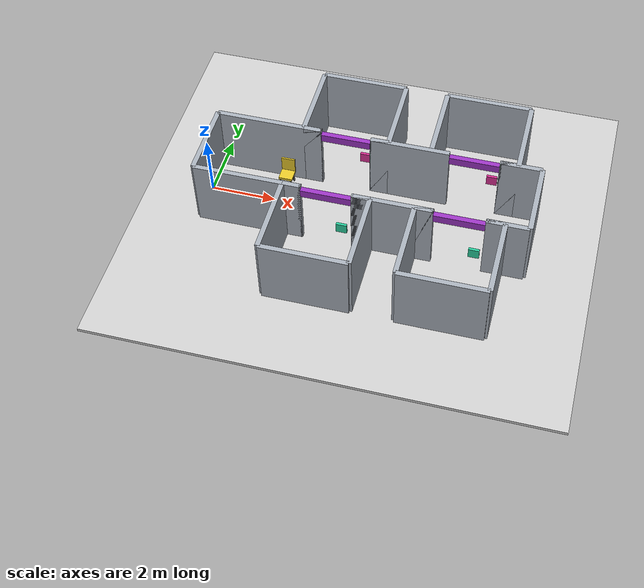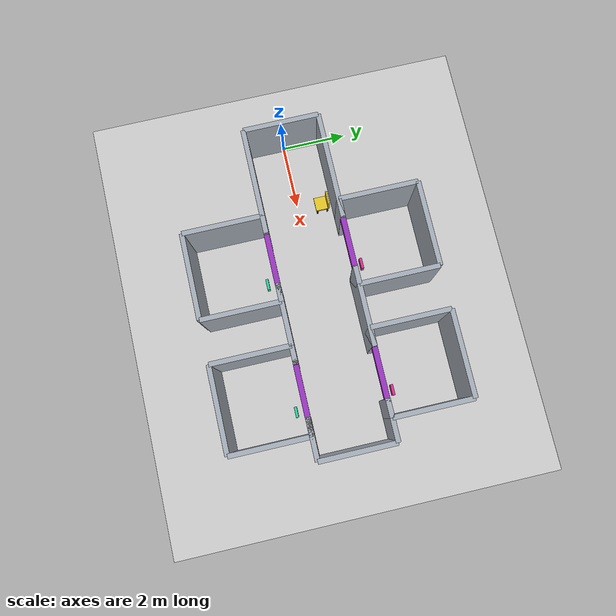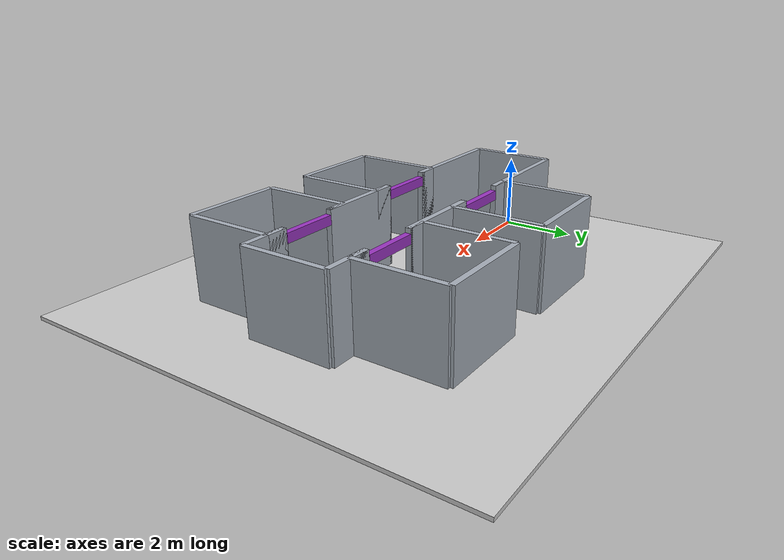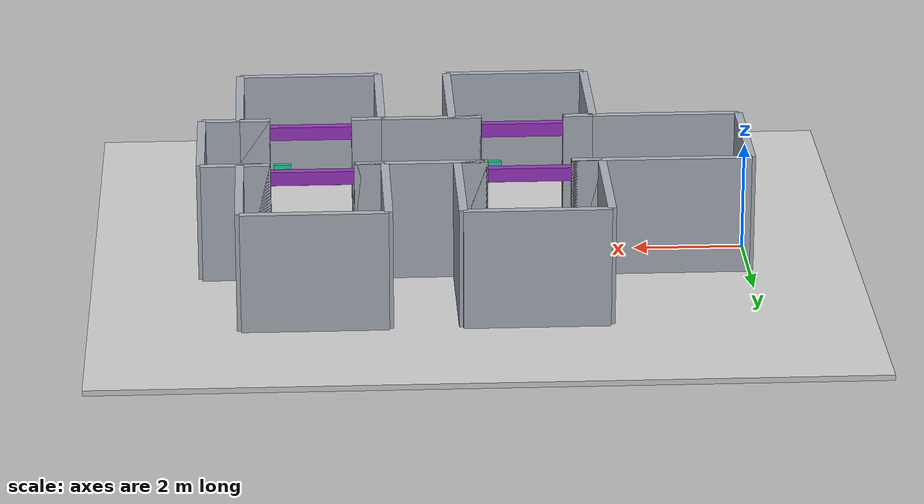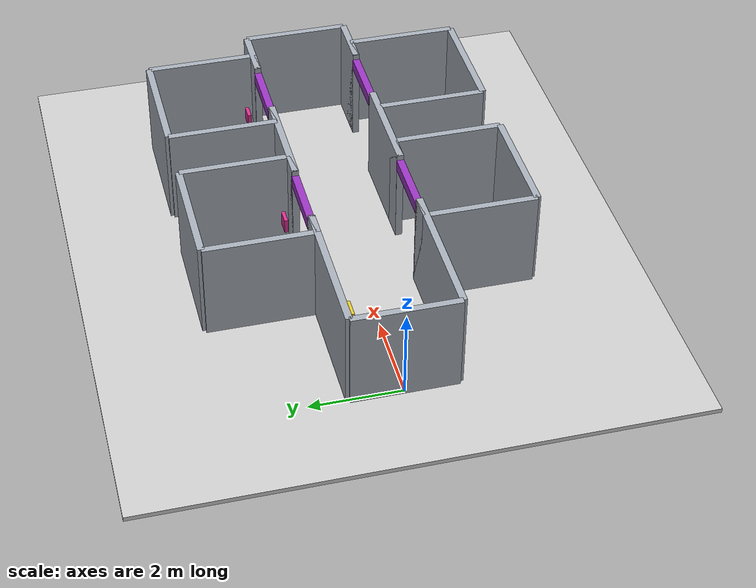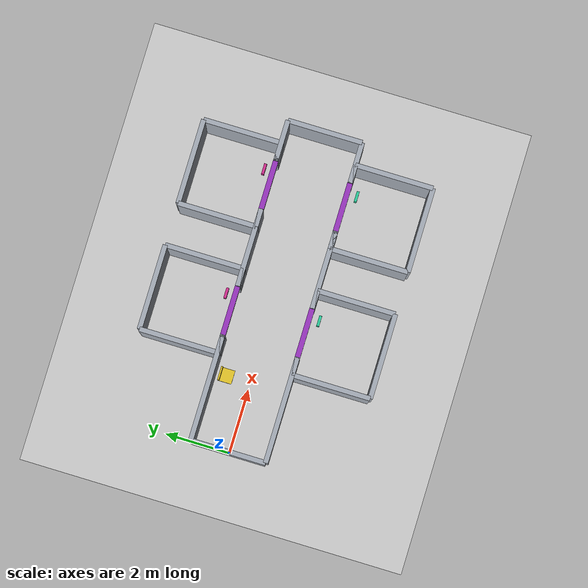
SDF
<sdf version="1.9">
  <world name="default">
    <plugin filename="gz-sim-physics-system" name="gz::sim::systems::Physics" />
    <plugin filename="gz-sim-user-commands-system" name="gz::sim::systems::UserCommands" />
    <plugin filename="gz-sim-sensors-system" name="gz::sim::systems::Sensors">
      <render_engine>ogre2</render_engine>
    </plugin>
    <plugin filename="gz-sim-imu-system" name="gz::sim::systems::Imu" />
    <plugin filename="gz-sim-contact-system" name="gz::sim::systems::Contact" />
    <physics name="3ms" type="ode">
      <max_step_size>0.003</max_step_size>
      <real_time_factor>1</real_time_factor>
    </physics>
    <light name="sun" type="directional">
      <pose>0 0 10 0 0 0</pose>
      <diffuse>0.9 0.9 0.9 1</diffuse>
      <direction>-0.5 0.1 -0.9</direction>
    </light>
    <model name="ground_plane">
      <static>true</static>
      <pose>4.95 0 -0.05 0 0 0</pose>
      <link name="body">
        <collision name="collision">
          <geometry>
            <box>
              <size>13.9 12 0.1</size>
            </box>
          </geometry>
        </collision>
        <visual name="visual">
          <geometry>
            <box>
              <size>13.9 12 0.1</size>
            </box>
          </geometry>
          <material>
            <ambient>0.8 0.8 0.8 1</ambient>
            <diffuse>0.8 0.8 0.8 1</diffuse>
          </material>
        </visual>
      </link>
    </model>
    <model name="start_wall">
      <static>true</static>
      <pose>0 0 1.1 0 0 0</pose>
      <link name="body">
        <collision name="collision">
          <geometry>
            <box>
              <size>0.15 2.3 2.2</size>
            </box>
          </geometry>
        </collision>
        <visual name="visual">
          <geometry>
            <box>
              <size>0.15 2.3 2.2</size>
            </box>
          </geometry>
          <material>
            <ambient>0.65 0.68 0.72 1</ambient>
            <diffuse>0.65 0.68 0.72 1</diffuse>
          </material>
        </visual>
      </link>
    </model>
    <model name="end_wall">
      <static>true</static>
      <pose>9.9 0 1.1 0 0 0</pose>
      <link name="body">
        <collision name="collision">
          <geometry>
            <box>
              <size>0.15 2.3 2.2</size>
            </box>
          </geometry>
        </collision>
        <visual name="visual">
          <geometry>
            <box>
              <size>0.15 2.3 2.2</size>
            </box>
          </geometry>
          <material>
            <ambient>0.65 0.68 0.72 1</ambient>
            <diffuse>0.65 0.68 0.72 1</diffuse>
          </material>
        </visual>
      </link>
    </model>
    <model name="hall_-1_1">
      <static>true</static>
      <pose>1.625 -1.15 1.1 0 0 0</pose>
      <link name="body">
        <collision name="collision">
          <geometry>
            <box>
              <size>3.25 0.15 2.2</size>
            </box>
          </geometry>
        </collision>
        <visual name="visual">
          <geometry>
            <box>
              <size>3.25 0.15 2.2</size>
            </box>
          </geometry>
          <material>
            <ambient>0.65 0.68 0.72 1</ambient>
            <diffuse>0.65 0.68 0.72 1</diffuse>
          </material>
        </visual>
      </link>
    </model>
    <model name="room_-1_1_-1">
      <static>true</static>
      <pose>2.7 -2.3499999999999996 1.1 0 0 0</pose>
      <link name="body">
        <collision name="collision">
          <geometry>
            <box>
              <size>0.15 2.4 2.2</size>
            </box>
          </geometry>
        </collision>
        <visual name="visual">
          <geometry>
            <box>
              <size>0.15 2.4 2.2</size>
            </box>
          </geometry>
          <material>
            <ambient>0.65 0.68 0.72 1</ambient>
            <diffuse>0.65 0.68 0.72 1</diffuse>
          </material>
        </visual>
      </link>
    </model>
    <model name="room_-1_1_1">
      <static>true</static>
      <pose>5.3 -2.3499999999999996 1.1 0 0 0</pose>
      <link name="body">
        <collision name="collision">
          <geometry>
            <box>
              <size>0.15 2.4 2.2</size>
            </box>
          </geometry>
        </collision>
        <visual name="visual">
          <geometry>
            <box>
              <size>0.15 2.4 2.2</size>
            </box>
          </geometry>
          <material>
            <ambient>0.65 0.68 0.72 1</ambient>
            <diffuse>0.65 0.68 0.72 1</diffuse>
          </material>
        </visual>
      </link>
    </model>
    <model name="room_end_-1_1">
      <static>true</static>
      <pose>4.0 -3.55 1.1 0 0 0</pose>
      <link name="body">
        <collision name="collision">
          <geometry>
            <box>
              <size>2.6 0.15 2.2</size>
            </box>
          </geometry>
        </collision>
        <visual name="visual">
          <geometry>
            <box>
              <size>2.6 0.15 2.2</size>
            </box>
          </geometry>
          <material>
            <ambient>0.65 0.68 0.72 1</ambient>
            <diffuse>0.65 0.68 0.72 1</diffuse>
          </material>
        </visual>
      </link>
    </model>
    <model name="jamb_-1_1_-1">
      <static>true</static>
      <pose>2.975 -1.15 1.1 0 0 0</pose>
      <link name="body">
        <collision name="collision">
          <geometry>
            <box>
              <size>0.55 0.15 2.2</size>
            </box>
          </geometry>
        </collision>
        <visual name="visual">
          <geometry>
            <box>
              <size>0.55 0.15 2.2</size>
            </box>
          </geometry>
          <material>
            <ambient>0.65 0.68 0.72 1</ambient>
            <diffuse>0.65 0.68 0.72 1</diffuse>
          </material>
        </visual>
      </link>
    </model>
    <model name="jamb_-1_1_1">
      <static>true</static>
      <pose>5.025 -1.15 1.1 0 0 0</pose>
      <link name="body">
        <collision name="collision">
          <geometry>
            <box>
              <size>0.55 0.15 2.2</size>
            </box>
          </geometry>
        </collision>
        <visual name="visual">
          <geometry>
            <box>
              <size>0.55 0.15 2.2</size>
            </box>
          </geometry>
          <material>
            <ambient>0.65 0.68 0.72 1</ambient>
            <diffuse>0.65 0.68 0.72 1</diffuse>
          </material>
        </visual>
      </link>
    </model>
    <model name="hall_-1_2">
      <static>true</static>
      <pose>5.95 -1.15 1.1 0 0 0</pose>
      <link name="body">
        <collision name="collision">
          <geometry>
            <box>
              <size>2.4000000000000004 0.15 2.2</size>
            </box>
          </geometry>
        </collision>
        <visual name="visual">
          <geometry>
            <box>
              <size>2.4000000000000004 0.15 2.2</size>
            </box>
          </geometry>
          <material>
            <ambient>0.65 0.68 0.72 1</ambient>
            <diffuse>0.65 0.68 0.72 1</diffuse>
          </material>
        </visual>
      </link>
    </model>
    <model name="room_-1_2_-1">
      <static>true</static>
      <pose>6.6000000000000005 -2.3499999999999996 1.1 0 0 0</pose>
      <link name="body">
        <collision name="collision">
          <geometry>
            <box>
              <size>0.15 2.4 2.2</size>
            </box>
          </geometry>
        </collision>
        <visual name="visual">
          <geometry>
            <box>
              <size>0.15 2.4 2.2</size>
            </box>
          </geometry>
          <material>
            <ambient>0.65 0.68 0.72 1</ambient>
            <diffuse>0.65 0.68 0.72 1</diffuse>
          </material>
        </visual>
      </link>
    </model>
    <model name="room_-1_2_1">
      <static>true</static>
      <pose>9.200000000000001 -2.3499999999999996 1.1 0 0 0</pose>
      <link name="body">
        <collision name="collision">
          <geometry>
            <box>
              <size>0.15 2.4 2.2</size>
            </box>
          </geometry>
        </collision>
        <visual name="visual">
          <geometry>
            <box>
              <size>0.15 2.4 2.2</size>
            </box>
          </geometry>
          <material>
            <ambient>0.65 0.68 0.72 1</ambient>
            <diffuse>0.65 0.68 0.72 1</diffuse>
          </material>
        </visual>
      </link>
    </model>
    <model name="room_end_-1_2">
      <static>true</static>
      <pose>7.9 -3.55 1.1 0 0 0</pose>
      <link name="body">
        <collision name="collision">
          <geometry>
            <box>
              <size>2.6 0.15 2.2</size>
            </box>
          </geometry>
        </collision>
        <visual name="visual">
          <geometry>
            <box>
              <size>2.6 0.15 2.2</size>
            </box>
          </geometry>
          <material>
            <ambient>0.65 0.68 0.72 1</ambient>
            <diffuse>0.65 0.68 0.72 1</diffuse>
          </material>
        </visual>
      </link>
    </model>
    <model name="jamb_-1_2_-1">
      <static>true</static>
      <pose>6.875 -1.15 1.1 0 0 0</pose>
      <link name="body">
        <collision name="collision">
          <geometry>
            <box>
              <size>0.55 0.15 2.2</size>
            </box>
          </geometry>
        </collision>
        <visual name="visual">
          <geometry>
            <box>
              <size>0.55 0.15 2.2</size>
            </box>
          </geometry>
          <material>
            <ambient>0.65 0.68 0.72 1</ambient>
            <diffuse>0.65 0.68 0.72 1</diffuse>
          </material>
        </visual>
      </link>
    </model>
    <model name="jamb_-1_2_1">
      <static>true</static>
      <pose>8.925 -1.15 1.1 0 0 0</pose>
      <link name="body">
        <collision name="collision">
          <geometry>
            <box>
              <size>0.55 0.15 2.2</size>
            </box>
          </geometry>
        </collision>
        <visual name="visual">
          <geometry>
            <box>
              <size>0.55 0.15 2.2</size>
            </box>
          </geometry>
          <material>
            <ambient>0.65 0.68 0.72 1</ambient>
            <diffuse>0.65 0.68 0.72 1</diffuse>
          </material>
        </visual>
      </link>
    </model>
    <model name="hall_end_-1">
      <static>true</static>
      <pose>9.275 -1.15 1.1 0 0 0</pose>
      <link name="body">
        <collision name="collision">
          <geometry>
            <box>
              <size>1.25 0.15 2.2</size>
            </box>
          </geometry>
        </collision>
        <visual name="visual">
          <geometry>
            <box>
              <size>1.25 0.15 2.2</size>
            </box>
          </geometry>
          <material>
            <ambient>0.65 0.68 0.72 1</ambient>
            <diffuse>0.65 0.68 0.72 1</diffuse>
          </material>
        </visual>
      </link>
    </model>
    <model name="hall_1_1">
      <static>true</static>
      <pose>1.625 1.15 1.1 0 0 0</pose>
      <link name="body">
        <collision name="collision">
          <geometry>
            <box>
              <size>3.25 0.15 2.2</size>
            </box>
          </geometry>
        </collision>
        <visual name="visual">
          <geometry>
            <box>
              <size>3.25 0.15 2.2</size>
            </box>
          </geometry>
          <material>
            <ambient>0.65 0.68 0.72 1</ambient>
            <diffuse>0.65 0.68 0.72 1</diffuse>
          </material>
        </visual>
      </link>
    </model>
    <model name="room_1_1_-1">
      <static>true</static>
      <pose>2.7 2.3499999999999996 1.1 0 0 0</pose>
      <link name="body">
        <collision name="collision">
          <geometry>
            <box>
              <size>0.15 2.4 2.2</size>
            </box>
          </geometry>
        </collision>
        <visual name="visual">
          <geometry>
            <box>
              <size>0.15 2.4 2.2</size>
            </box>
          </geometry>
          <material>
            <ambient>0.65 0.68 0.72 1</ambient>
            <diffuse>0.65 0.68 0.72 1</diffuse>
          </material>
        </visual>
      </link>
    </model>
    <model name="room_1_1_1">
      <static>true</static>
      <pose>5.3 2.3499999999999996 1.1 0 0 0</pose>
      <link name="body">
        <collision name="collision">
          <geometry>
            <box>
              <size>0.15 2.4 2.2</size>
            </box>
          </geometry>
        </collision>
        <visual name="visual">
          <geometry>
            <box>
              <size>0.15 2.4 2.2</size>
            </box>
          </geometry>
          <material>
            <ambient>0.65 0.68 0.72 1</ambient>
            <diffuse>0.65 0.68 0.72 1</diffuse>
          </material>
        </visual>
      </link>
    </model>
    <model name="room_end_1_1">
      <static>true</static>
      <pose>4.0 3.55 1.1 0 0 0</pose>
      <link name="body">
        <collision name="collision">
          <geometry>
            <box>
              <size>2.6 0.15 2.2</size>
            </box>
          </geometry>
        </collision>
        <visual name="visual">
          <geometry>
            <box>
              <size>2.6 0.15 2.2</size>
            </box>
          </geometry>
          <material>
            <ambient>0.65 0.68 0.72 1</ambient>
            <diffuse>0.65 0.68 0.72 1</diffuse>
          </material>
        </visual>
      </link>
    </model>
    <model name="jamb_1_1_-1">
      <static>true</static>
      <pose>2.975 1.15 1.1 0 0 0</pose>
      <link name="body">
        <collision name="collision">
          <geometry>
            <box>
              <size>0.55 0.15 2.2</size>
            </box>
          </geometry>
        </collision>
        <visual name="visual">
          <geometry>
            <box>
              <size>0.55 0.15 2.2</size>
            </box>
          </geometry>
          <material>
            <ambient>0.65 0.68 0.72 1</ambient>
            <diffuse>0.65 0.68 0.72 1</diffuse>
          </material>
        </visual>
      </link>
    </model>
    <model name="jamb_1_1_1">
      <static>true</static>
      <pose>5.025 1.15 1.1 0 0 0</pose>
      <link name="body">
        <collision name="collision">
          <geometry>
            <box>
              <size>0.55 0.15 2.2</size>
            </box>
          </geometry>
        </collision>
        <visual name="visual">
          <geometry>
            <box>
              <size>0.55 0.15 2.2</size>
            </box>
          </geometry>
          <material>
            <ambient>0.65 0.68 0.72 1</ambient>
            <diffuse>0.65 0.68 0.72 1</diffuse>
          </material>
        </visual>
      </link>
    </model>
    <model name="hall_1_2">
      <static>true</static>
      <pose>5.95 1.15 1.1 0 0 0</pose>
      <link name="body">
        <collision name="collision">
          <geometry>
            <box>
              <size>2.4000000000000004 0.15 2.2</size>
            </box>
          </geometry>
        </collision>
        <visual name="visual">
          <geometry>
            <box>
              <size>2.4000000000000004 0.15 2.2</size>
            </box>
          </geometry>
          <material>
            <ambient>0.65 0.68 0.72 1</ambient>
            <diffuse>0.65 0.68 0.72 1</diffuse>
          </material>
        </visual>
      </link>
    </model>
    <model name="room_1_2_-1">
      <static>true</static>
      <pose>6.6000000000000005 2.3499999999999996 1.1 0 0 0</pose>
      <link name="body">
        <collision name="collision">
          <geometry>
            <box>
              <size>0.15 2.4 2.2</size>
            </box>
          </geometry>
        </collision>
        <visual name="visual">
          <geometry>
            <box>
              <size>0.15 2.4 2.2</size>
            </box>
          </geometry>
          <material>
            <ambient>0.65 0.68 0.72 1</ambient>
            <diffuse>0.65 0.68 0.72 1</diffuse>
          </material>
        </visual>
      </link>
    </model>
    <model name="room_1_2_1">
      <static>true</static>
      <pose>9.200000000000001 2.3499999999999996 1.1 0 0 0</pose>
      <link name="body">
        <collision name="collision">
          <geometry>
            <box>
              <size>0.15 2.4 2.2</size>
            </box>
          </geometry>
        </collision>
        <visual name="visual">
          <geometry>
            <box>
              <size>0.15 2.4 2.2</size>
            </box>
          </geometry>
          <material>
            <ambient>0.65 0.68 0.72 1</ambient>
            <diffuse>0.65 0.68 0.72 1</diffuse>
          </material>
        </visual>
      </link>
    </model>
    <model name="room_end_1_2">
      <static>true</static>
      <pose>7.9 3.55 1.1 0 0 0</pose>
      <link name="body">
        <collision name="collision">
          <geometry>
            <box>
              <size>2.6 0.15 2.2</size>
            </box>
          </geometry>
        </collision>
        <visual name="visual">
          <geometry>
            <box>
              <size>2.6 0.15 2.2</size>
            </box>
          </geometry>
          <material>
            <ambient>0.65 0.68 0.72 1</ambient>
            <diffuse>0.65 0.68 0.72 1</diffuse>
          </material>
        </visual>
      </link>
    </model>
    <model name="jamb_1_2_-1">
      <static>true</static>
      <pose>6.875 1.15 1.1 0 0 0</pose>
      <link name="body">
        <collision name="collision">
          <geometry>
            <box>
              <size>0.55 0.15 2.2</size>
            </box>
          </geometry>
        </collision>
        <visual name="visual">
          <geometry>
            <box>
              <size>0.55 0.15 2.2</size>
            </box>
          </geometry>
          <material>
            <ambient>0.65 0.68 0.72 1</ambient>
            <diffuse>0.65 0.68 0.72 1</diffuse>
          </material>
        </visual>
      </link>
    </model>
    <model name="jamb_1_2_1">
      <static>true</static>
      <pose>8.925 1.15 1.1 0 0 0</pose>
      <link name="body">
        <collision name="collision">
          <geometry>
            <box>
              <size>0.55 0.15 2.2</size>
            </box>
          </geometry>
        </collision>
        <visual name="visual">
          <geometry>
            <box>
              <size>0.55 0.15 2.2</size>
            </box>
          </geometry>
          <material>
            <ambient>0.65 0.68 0.72 1</ambient>
            <diffuse>0.65 0.68 0.72 1</diffuse>
          </material>
        </visual>
      </link>
    </model>
    <model name="hall_end_1">
      <static>true</static>
      <pose>9.275 1.15 1.1 0 0 0</pose>
      <link name="body">
        <collision name="collision">
          <geometry>
            <box>
              <size>1.25 0.15 2.2</size>
            </box>
          </geometry>
        </collision>
        <visual name="visual">
          <geometry>
            <box>
              <size>1.25 0.15 2.2</size>
            </box>
          </geometry>
          <material>
            <ambient>0.65 0.68 0.72 1</ambient>
            <diffuse>0.65 0.68 0.72 1</diffuse>
          </material>
        </visual>
      </link>
    </model>
    <model name="chair_seat">
      <static>true</static>
      <pose>2.2 0.7499999999999999 0.4 0 0 0</pose>
      <link name="body">
        <collision name="collision">
          <geometry>
            <box>
              <size>0.42 0.42 0.08</size>
            </box>
          </geometry>
        </collision>
        <visual name="visual">
          <geometry>
            <box>
              <size>0.42 0.42 0.08</size>
            </box>
          </geometry>
          <material>
            <ambient>0.9 0.78 0.16 1</ambient>
            <diffuse>0.9 0.78 0.16 1</diffuse>
          </material>
        </visual>
      </link>
    </model>
    <model name="chair_back">
      <static>true</static>
      <pose>2.2 0.94 0.67 0 0 0</pose>
      <link name="body">
        <collision name="collision">
          <geometry>
            <box>
              <size>0.42 0.05 0.5</size>
            </box>
          </geometry>
        </collision>
        <visual name="visual">
          <geometry>
            <box>
              <size>0.42 0.05 0.5</size>
            </box>
          </geometry>
          <material>
            <ambient>0.9 0.78 0.16 1</ambient>
            <diffuse>0.9 0.78 0.16 1</diffuse>
          </material>
        </visual>
      </link>
    </model>
    <model name="chair_leg_-0.16_-0.16">
      <static>true</static>
      <pose>2.04 0.5899999999999999 0.19 0 0 0</pose>
      <link name="body">
        <collision name="collision">
          <geometry>
            <box>
              <size>0.04 0.04 0.38</size>
            </box>
          </geometry>
        </collision>
        <visual name="visual">
          <geometry>
            <box>
              <size>0.04 0.04 0.38</size>
            </box>
          </geometry>
          <material>
            <ambient>0.2 0.2 0.2 1</ambient>
            <diffuse>0.2 0.2 0.2 1</diffuse>
          </material>
        </visual>
      </link>
    </model>
    <model name="chair_leg_-0.16_0.16">
      <static>true</static>
      <pose>2.04 0.9099999999999999 0.19 0 0 0</pose>
      <link name="body">
        <collision name="collision">
          <geometry>
            <box>
              <size>0.04 0.04 0.38</size>
            </box>
          </geometry>
        </collision>
        <visual name="visual">
          <geometry>
            <box>
              <size>0.04 0.04 0.38</size>
            </box>
          </geometry>
          <material>
            <ambient>0.2 0.2 0.2 1</ambient>
            <diffuse>0.2 0.2 0.2 1</diffuse>
          </material>
        </visual>
      </link>
    </model>
    <model name="chair_leg_0.16_-0.16">
      <static>true</static>
      <pose>2.3600000000000003 0.5899999999999999 0.19 0 0 0</pose>
      <link name="body">
        <collision name="collision">
          <geometry>
            <box>
              <size>0.04 0.04 0.38</size>
            </box>
          </geometry>
        </collision>
        <visual name="visual">
          <geometry>
            <box>
              <size>0.04 0.04 0.38</size>
            </box>
          </geometry>
          <material>
            <ambient>0.2 0.2 0.2 1</ambient>
            <diffuse>0.2 0.2 0.2 1</diffuse>
          </material>
        </visual>
      </link>
    </model>
    <model name="chair_leg_0.16_0.16">
      <static>true</static>
      <pose>2.3600000000000003 0.9099999999999999 0.19 0 0 0</pose>
      <link name="body">
        <collision name="collision">
          <geometry>
            <box>
              <size>0.04 0.04 0.38</size>
            </box>
          </geometry>
        </collision>
        <visual name="visual">
          <geometry>
            <box>
              <size>0.04 0.04 0.38</size>
            </box>
          </geometry>
          <material>
            <ambient>0.2 0.2 0.2 1</ambient>
            <diffuse>0.2 0.2 0.2 1</diffuse>
          </material>
        </visual>
      </link>
    </model>
    <model name="r3geo_base_r012_right_1_lintel">
      <static>true</static>
      <pose>4.0 -1.15 1.95 0 0 0</pose>
      <link name="body">
        <collision name="collision">
          <geometry>
            <box>
              <size>1.5 0.16 0.25</size>
            </box>
          </geometry>
        </collision>
        <visual name="visual">
          <geometry>
            <box>
              <size>1.5 0.16 0.25</size>
            </box>
          </geometry>
          <material>
            <ambient>0.6 0.2 0.75 1</ambient>
            <diffuse>0.6 0.2 0.75 1</diffuse>
          </material>
        </visual>
      </link>
    </model>
    <model name="r3geo_base_r012_right_1_entrance_sign">
      <static>true</static>
      <pose>4.53 -1.45 1.05 0 0 0</pose>
      <link name="body">
        <visual name="visual">
          <geometry>
            <box>
              <size>0.32 0.08 0.32</size>
            </box>
          </geometry>
          <material>
            <ambient>0.16 0.8 0.61 1</ambient>
            <diffuse>0.16 0.8 0.61 1</diffuse>
          </material>
        </visual>
      </link>
    </model>
    <model name="r3geo_base_r012_right_2_lintel">
      <static>true</static>
      <pose>7.9 -1.15 1.95 0 0 0</pose>
      <link name="body">
        <collision name="collision">
          <geometry>
            <box>
              <size>1.5 0.16 0.25</size>
            </box>
          </geometry>
        </collision>
        <visual name="visual">
          <geometry>
            <box>
              <size>1.5 0.16 0.25</size>
            </box>
          </geometry>
          <material>
            <ambient>0.6 0.2 0.75 1</ambient>
            <diffuse>0.6 0.2 0.75 1</diffuse>
          </material>
        </visual>
      </link>
    </model>
    <model name="r3geo_base_r012_right_2_entrance_sign">
      <static>true</static>
      <pose>8.43 -1.45 1.05 0 0 0</pose>
      <link name="body">
        <visual name="visual">
          <geometry>
            <box>
              <size>0.32 0.08 0.32</size>
            </box>
          </geometry>
          <material>
            <ambient>0.16 0.8 0.61 1</ambient>
            <diffuse>0.16 0.8 0.61 1</diffuse>
          </material>
        </visual>
      </link>
    </model>
    <model name="r3geo_base_r012_left_1_lintel">
      <static>true</static>
      <pose>4.0 1.15 1.95 0 0 0</pose>
      <link name="body">
        <collision name="collision">
          <geometry>
            <box>
              <size>1.5 0.16 0.25</size>
            </box>
          </geometry>
        </collision>
        <visual name="visual">
          <geometry>
            <box>
              <size>1.5 0.16 0.25</size>
            </box>
          </geometry>
          <material>
            <ambient>0.6 0.2 0.75 1</ambient>
            <diffuse>0.6 0.2 0.75 1</diffuse>
          </material>
        </visual>
      </link>
    </model>
    <model name="r3geo_base_r012_left_1_entrance_sign">
      <static>true</static>
      <pose>4.53 1.45 1.05 0 0 0</pose>
      <link name="body">
        <visual name="visual">
          <geometry>
            <box>
              <size>0.32 0.08 0.32</size>
            </box>
          </geometry>
          <material>
            <ambient>0.84 0.18 0.57 1</ambient>
            <diffuse>0.84 0.18 0.57 1</diffuse>
          </material>
        </visual>
      </link>
    </model>
    <model name="r3geo_base_r012_left_2_lintel">
      <static>true</static>
      <pose>7.9 1.15 1.95 0 0 0</pose>
      <link name="body">
        <collision name="collision">
          <geometry>
            <box>
              <size>1.5 0.16 0.25</size>
            </box>
          </geometry>
        </collision>
        <visual name="visual">
          <geometry>
            <box>
              <size>1.5 0.16 0.25</size>
            </box>
          </geometry>
          <material>
            <ambient>0.6 0.2 0.75 1</ambient>
            <diffuse>0.6 0.2 0.75 1</diffuse>
          </material>
        </visual>
      </link>
    </model>
    <model name="r3geo_base_r012_left_2_entrance_sign">
      <static>true</static>
      <pose>8.43 1.45 1.05 0 0 0</pose>
      <link name="body">
        <visual name="visual">
          <geometry>
            <box>
              <size>0.32 0.08 0.32</size>
            </box>
          </geometry>
          <material>
            <ambient>0.84 0.18 0.57 1</ambient>
            <diffuse>0.84 0.18 0.57 1</diffuse>
          </material>
        </visual>
      </link>
    </model>
  </world>
</sdf>
